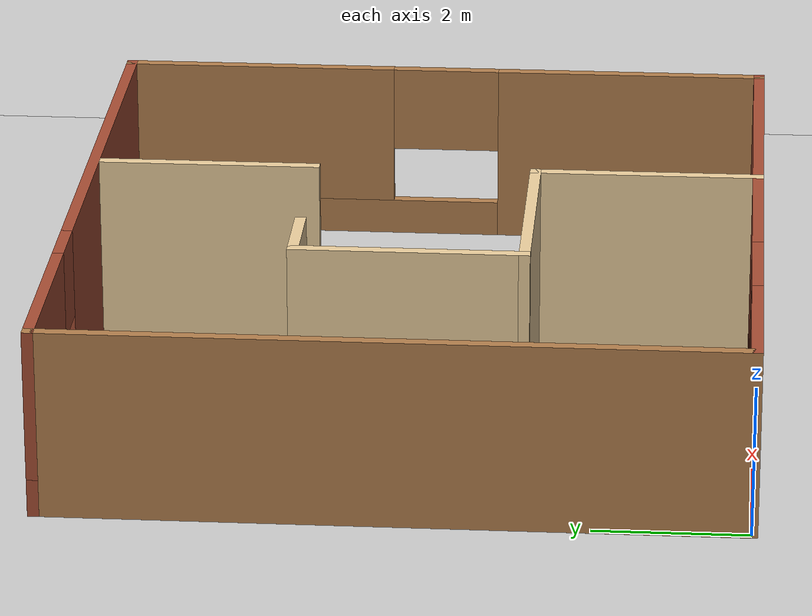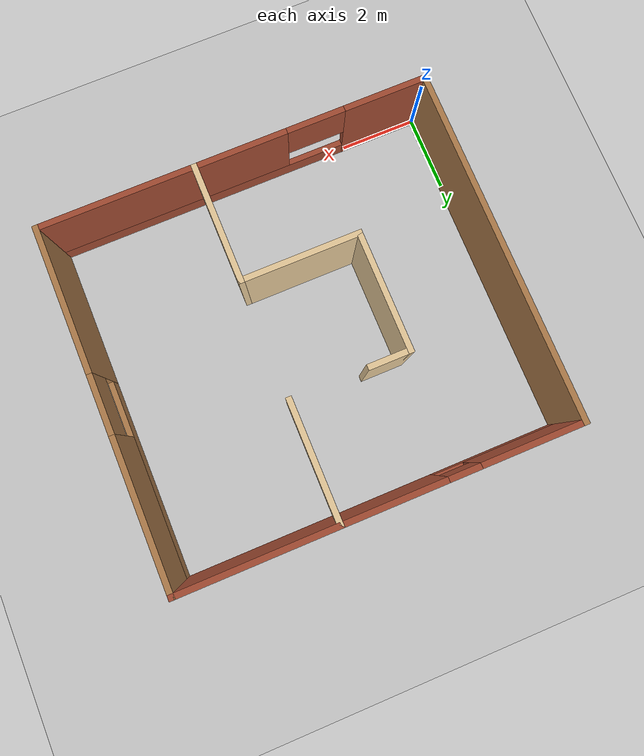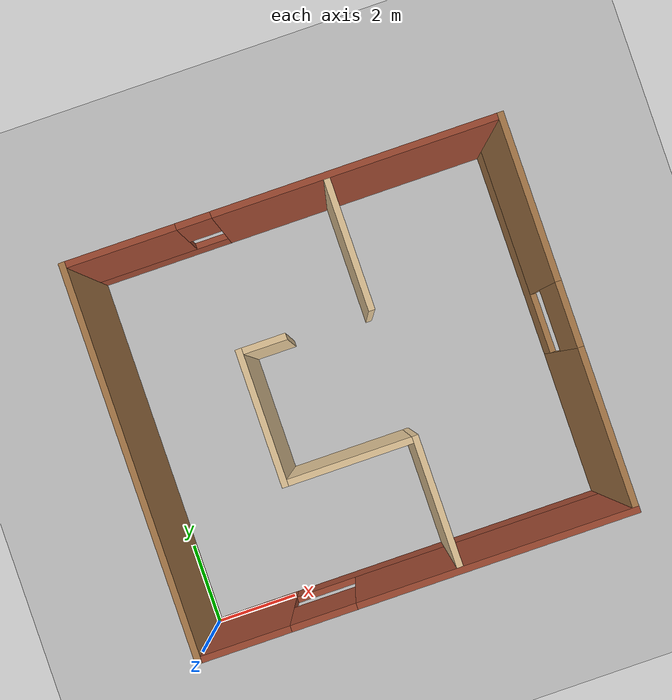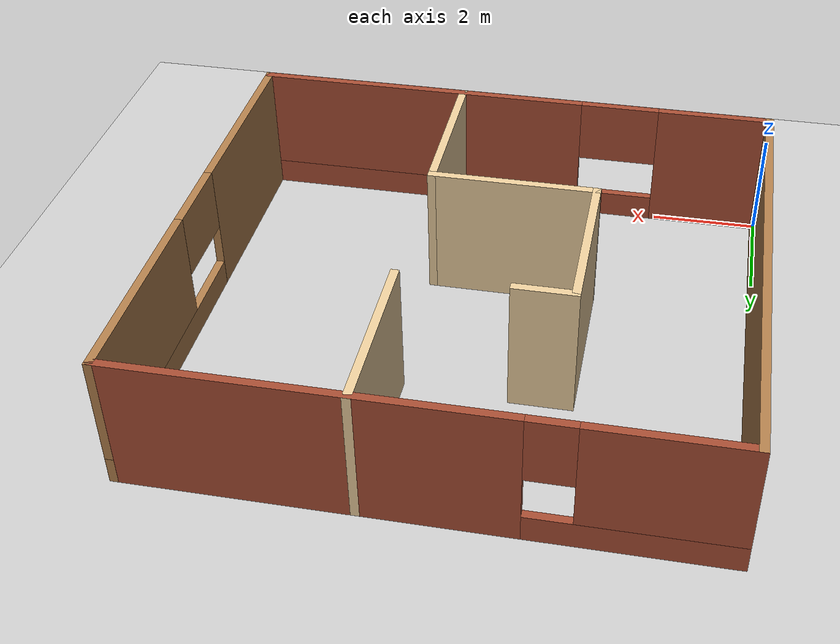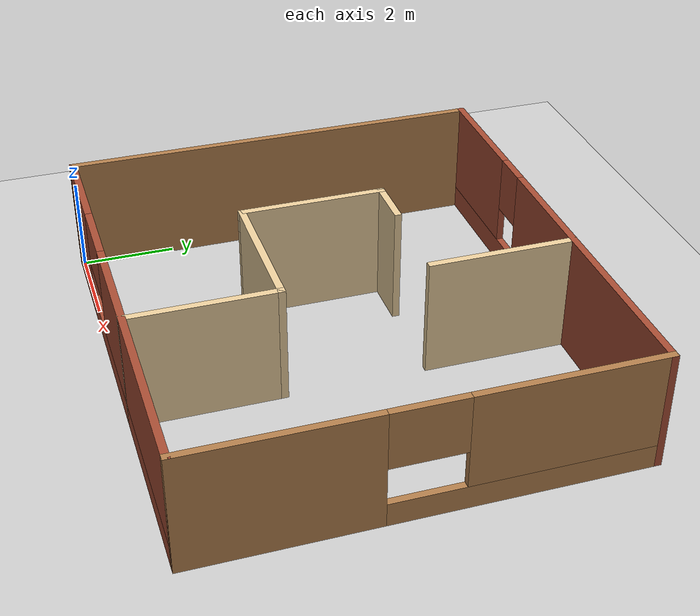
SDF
<sdf version="1.6">
 <world name="default">
  <plugin name="hello" filename="libhello.so"/>
  <light name="sun" type="directional">
   <pose>0 0 10 0 -0 0</pose>
   <diffuse>0.8 0.8 0.8 1</diffuse>
   <specular>0.2 0.2 0.2 1</specular>
   <attenuation>
    <range>1000</range>
    <constant>0.9</constant>
    <linear>0.01</linear>
    <quadratic>0.001</quadratic>
   </attenuation>
   <direction>-0.5 0.1 -0.9</direction>
  </light>
  <model name="ground_plane">
   <static>1</static>
   <link name="link">
    <collision name="collision">
     <geometry><plane><normal>0 0 1</normal><size>100 100</size></plane></geometry>
     <surface>
      <contact><collide_bitmask>65535</collide_bitmask></contact>
      <friction><ode><mu>100</mu><mu2>50</mu2></ode></friction>
     </surface>
    </collision>
    <visual name="visual">
     <cast_shadows>0</cast_shadows>
     <geometry><plane><normal>0 0 1</normal><size>100 100</size></plane></geometry>
     <material>
      <script><uri>file://media/materials/scripts/gazebo.material</uri><name>Gazebo/Grey</name></script>
     </material>
    </visual>
   </link>
  </model>
  <gravity>0 0 -9.8</gravity>
  <magnetic_field>6e-06 2.3e-05 -4.2e-05</magnetic_field>
  <atmosphere type="adiabatic"/>
  <physics name="default_physics" default="0" type="ode">
   <max_step_size>0.001</max_step_size>
   <real_time_factor>1</real_time_factor>
   <real_time_update_rate>1000</real_time_update_rate>
  </physics>
  <scene><ambient>0.4 0.4 0.4 1</ambient><background>0.7 0.7 0.7 1</background><shadows>1</shadows></scene>
  <spherical_coordinates>
   <surface_model>EARTH_WGS84</surface_model>
   <latitude_deg>0</latitude_deg>
   <longitude_deg>0</longitude_deg>
   <elevation>0</elevation>
   <heading_deg>0</heading_deg>
  </spherical_coordinates>
  <model name="mybuilding_0">
   <pose>5 4.5 0 0 -0 0</pose>
   <link name="Wall_0">
    <collision name="Wall_0_Collision">
     <geometry><box><size>9.15 0.15 2.5</size></box></geometry>
     <pose>0 0 1.25 0 -0 0</pose>
    </collision>
    <visual name="Wall_0_Visual">
     <pose>0 0 1.25 0 -0 0</pose>
     <geometry><box><size>9.15 0.15 2.5</size></box></geometry>
     <material>
      <script><uri>file://media/materials/scripts/gazebo.material</uri><name>Gazebo/Wood</name></script>
      <ambient>1 1 1 1</ambient>
     </material>
     <meta><layer>0</layer></meta>
    </visual>
    <pose>-5 0 0 0 0 -1.5708</pose>
   </link>
   <link name="Wall_1">
    <pose>0 -4.5 0 0 -0 0</pose>
    <visual name="Wall_1_Visual_0">
     <pose>-3.97595 0 1.25 0 -0 0</pose>
     <geometry><box><size>2.1981 0.15 2.5</size></box></geometry>
     <material>
      <script><uri>file://media/materials/scripts/gazebo.material</uri><name>Gazebo/Bricks</name></script>
      <ambient>1 1 1 1</ambient>
     </material>
     <meta><layer>0</layer></meta>
    </visual>
    <collision name="Wall_1_Collision_0">
     <geometry><box><size>2.1981 0.15 2.5</size></box></geometry>
     <pose>-3.97595 0 1.25 0 -0 0</pose>
    </collision>
    <visual name="Wall_1_Visual_1">
     <pose>1.09905 0 0.25 0 -0 0</pose>
     <geometry><box><size>7.9519 0.15 0.5</size></box></geometry>
     <material>
      <script><uri>file://media/materials/scripts/gazebo.material</uri><name>Gazebo/Bricks</name></script>
      <ambient>1 1 1 1</ambient>
     </material>
     <meta><layer>0</layer></meta>
    </visual>
    <collision name="Wall_1_Collision_1">
     <geometry><box><size>7.9519 0.15 0.5</size></box></geometry>
     <pose>1.09905 0 0.25 0 -0 0</pose>
    </collision>
    <visual name="Wall_1_Visual_2">
     <pose>1.84905 0 1.5 0 -0 0</pose>
     <geometry><box><size>6.4519 0.15 2</size></box></geometry>
     <material>
      <script><uri>file://media/materials/scripts/gazebo.material</uri><name>Gazebo/Bricks</name></script>
      <ambient>1 1 1 1</ambient>
     </material>
     <meta><layer>0</layer></meta>
    </visual>
    <collision name="Wall_1_Collision_2">
     <geometry><box><size>6.4519 0.15 2</size></box></geometry>
     <pose>1.84905 0 1.5 0 -0 0</pose>
    </collision>
    <visual name="Wall_1_Visual_3">
     <pose>-2.1269 0 1.9 0 -0 0</pose>
     <geometry><box><size>1.5 0.15 1.2</size></box></geometry>
     <material>
      <script><uri>file://media/materials/scripts/gazebo.material</uri><name>Gazebo/Bricks</name></script>
      <ambient>1 1 1 1</ambient>
     </material>
     <meta><layer>0</layer></meta>
    </visual>
    <collision name="Wall_1_Collision_3">
     <geometry><box><size>1.5 0.15 1.2</size></box></geometry>
     <pose>-2.1269 0 1.9 0 -0 0</pose>
    </collision>
   </link>
   <link name="Wall_10">
    <collision name="Wall_10_Collision">
     <geometry><box><size>3.15 0.15 2.5</size></box></geometry>
     <pose>0 0 1.25 0 -0 0</pose>
    </collision>
    <visual name="Wall_10_Visual">
     <pose>0 0 1.25 0 -0 0</pose>
     <geometry><box><size>3.15 0.15 2.5</size></box></geometry>
     <material>
      <script><uri>file://media/materials/scripts/gazebo.material</uri><name>Gazebo/Grey</name></script>
      <ambient>0.921569 0.807843 0.615686 1</ambient>
     </material>
     <meta><layer>0</layer></meta>
    </visual>
    <pose>-2 0 0 0 -0 1.5708</pose>
   </link>
   <link name="Wall_11">
    <collision name="Wall_11_Collision">
     <geometry><box><size>1.15 0.15 2.5</size></box></geometry>
     <pose>0 0 1.25 0 -0 0</pose>
    </collision>
    <visual name="Wall_11_Visual">
     <pose>0 0 1.25 0 -0 0</pose>
     <geometry><box><size>1.15 0.15 2.5</size></box></geometry>
     <material>
      <script><uri>file://media/materials/scripts/gazebo.material</uri><name>Gazebo/Grey</name></script>
      <ambient>0.921569 0.807843 0.615686 1</ambient>
     </material>
     <meta><layer>0</layer></meta>
    </visual>
    <pose>-1.5 1.5 0 0 -0 0</pose>
   </link>
   <link name="Wall_2">
    <pose>5 0 0 0 -0 1.5708</pose>
    <visual name="Wall_2_Visual_0">
     <pose>-2.67872 0 1.25 0 -0 0</pose>
     <geometry><box><size>3.79256 0.15 2.5</size></box></geometry>
     <material>
      <script><uri>file://media/materials/scripts/gazebo.material</uri><name>Gazebo/Wood</name></script>
      <ambient>1 1 1 1</ambient>
     </material>
     <meta><layer>0</layer></meta>
    </visual>
    <collision name="Wall_2_Collision_0">
     <geometry><box><size>3.79256 0.15 2.5</size></box></geometry>
     <pose>-2.67872 0 1.25 0 -0 0</pose>
    </collision>
    <visual name="Wall_2_Visual_1">
     <pose>1.89628 0 0.25 0 -0 0</pose>
     <geometry><box><size>5.35745 0.15 0.5</size></box></geometry>
     <material>
      <script><uri>file://media/materials/scripts/gazebo.material</uri><name>Gazebo/Wood</name></script>
      <ambient>1 1 1 1</ambient>
     </material>
     <meta><layer>0</layer></meta>
    </visual>
    <collision name="Wall_2_Collision_1">
     <geometry><box><size>5.35745 0.15 0.5</size></box></geometry>
     <pose>1.89628 0 0.25 0 -0 0</pose>
    </collision>
    <visual name="Wall_2_Visual_2">
     <pose>2.64628 0 1.5 0 -0 0</pose>
     <geometry><box><size>3.85744 0.15 2</size></box></geometry>
     <material>
      <script><uri>file://media/materials/scripts/gazebo.material</uri><name>Gazebo/Wood</name></script>
      <ambient>1 1 1 1</ambient>
     </material>
     <meta><layer>0</layer></meta>
    </visual>
    <collision name="Wall_2_Collision_2">
     <geometry><box><size>3.85744 0.15 2</size></box></geometry>
     <pose>2.64628 0 1.5 0 -0 0</pose>
    </collision>
    <visual name="Wall_2_Visual_3">
     <pose>-0.032445 0 1.9 0 -0 0</pose>
     <geometry><box><size>1.5 0.15 1.2</size></box></geometry>
     <material>
      <script><uri>file://media/materials/scripts/gazebo.material</uri><name>Gazebo/Wood</name></script>
      <ambient>1 1 1 1</ambient>
     </material>
     <meta><layer>0</layer></meta>
    </visual>
    <collision name="Wall_2_Collision_3">
     <geometry><box><size>1.5 0.15 1.2</size></box></geometry>
     <pose>-0.032445 0 1.9 0 -0 0</pose>
    </collision>
   </link>
   <link name="Wall_3">
    <pose>0 4.5 0 0 -0 3.14159</pose>
    <visual name="Wall_3_Visual_0">
     <pose>-1.72776 0 1.25 0 -0 0</pose>
     <geometry><box><size>6.69447 0.15 2.5</size></box></geometry>
     <material>
      <script><uri>file://media/materials/scripts/gazebo.material</uri><name>Gazebo/Bricks</name></script>
      <ambient>1 1 1 1</ambient>
     </material>
     <meta><layer>0</layer></meta>
    </visual>
    <collision name="Wall_3_Collision_0">
     <geometry><box><size>6.69447 0.15 2.5</size></box></geometry>
     <pose>-1.72776 0 1.25 0 -0 0</pose>
    </collision>
    <visual name="Wall_3_Visual_1">
     <pose>3.34724 0 0.25 0 -0 0</pose>
     <geometry><box><size>3.45553 0.15 0.5</size></box></geometry>
     <material>
      <script><uri>file://media/materials/scripts/gazebo.material</uri><name>Gazebo/Bricks</name></script>
      <ambient>1 1 1 1</ambient>
     </material>
     <meta><layer>0</layer></meta>
    </visual>
    <collision name="Wall_3_Collision_1">
     <geometry><box><size>3.45553 0.15 0.5</size></box></geometry>
     <pose>3.34724 0 0.25 0 -0 0</pose>
    </collision>
    <visual name="Wall_3_Visual_2">
     <pose>3.74724 0 1.5 0 -0 0</pose>
     <geometry><box><size>2.65553 0.15 2</size></box></geometry>
     <material>
      <script><uri>file://media/materials/scripts/gazebo.material</uri><name>Gazebo/Bricks</name></script>
      <ambient>1 1 1 1</ambient>
     </material>
     <meta><layer>0</layer></meta>
    </visual>
    <collision name="Wall_3_Collision_2">
     <geometry><box><size>2.65553 0.15 2</size></box></geometry>
     <pose>3.74724 0 1.5 0 -0 0</pose>
    </collision>
    <visual name="Wall_3_Visual_3">
     <pose>2.01947 0 1.9 0 -0 0</pose>
     <geometry><box><size>0.8 0.15 1.2</size></box></geometry>
     <material>
      <script><uri>file://media/materials/scripts/gazebo.material</uri><name>Gazebo/Bricks</name></script>
      <ambient>1 1 1 1</ambient>
     </material>
     <meta><layer>0</layer></meta>
    </visual>
    <collision name="Wall_3_Collision_3">
     <geometry><box><size>0.8 0.15 1.2</size></box></geometry>
     <pose>2.01947 0 1.9 0 -0 0</pose>
    </collision>
   </link>
   <link name="Wall_5">
    <collision name="Wall_5_Collision">
     <geometry><box><size>3.15 0.15 2.5</size></box></geometry>
     <pose>0 0 1.25 0 -0 0</pose>
    </collision>
    <visual name="Wall_5_Visual">
     <pose>0 0 1.25 0 -0 0</pose>
     <geometry><box><size>3.15 0.15 2.5</size></box></geometry>
     <material>
      <script><uri>file://media/materials/scripts/gazebo.material</uri><name>Gazebo/Grey</name></script>
      <ambient>0.921569 0.807843 0.615686 1</ambient>
     </material>
     <meta><layer>0</layer></meta>
    </visual>
    <pose>1 3 0 0 0 -1.5708</pose>
   </link>
   <link name="Wall_7">
    <collision name="Wall_7_Collision">
     <geometry><box><size>3.15 0.15 2.5</size></box></geometry>
     <pose>0 0 1.25 0 -0 0</pose>
    </collision>
    <visual name="Wall_7_Visual">
     <pose>0 0 1.25 0 -0 0</pose>
     <geometry><box><size>3.15 0.15 2.5</size></box></geometry>
     <material>
      <script><uri>file://media/materials/scripts/gazebo.material</uri><name>Gazebo/Grey</name></script>
      <ambient>0.921569 0.807843 0.615686 1</ambient>
     </material>
     <meta><layer>0</layer></meta>
    </visual>
    <pose>1 -3 0 0 -0 1.5708</pose>
   </link>
   <link name="Wall_9">
    <collision name="Wall_9_Collision">
     <geometry><box><size>3.15 0.15 2.5</size></box></geometry>
     <pose>0 0 1.25 0 -0 0</pose>
    </collision>
    <visual name="Wall_9_Visual">
     <pose>0 0 1.25 0 -0 0</pose>
     <geometry><box><size>3.15 0.15 2.5</size></box></geometry>
     <material>
      <script><uri>file://media/materials/scripts/gazebo.material</uri><name>Gazebo/Grey</name></script>
      <ambient>0.921569 0.807843 0.615686 1</ambient>
     </material>
     <meta><layer>0</layer></meta>
    </visual>
    <pose>-0.5 -1.5 0 0 -0 3.14159</pose>
   </link>
   <static>1</static>
  </model>
 </world>
</sdf>
